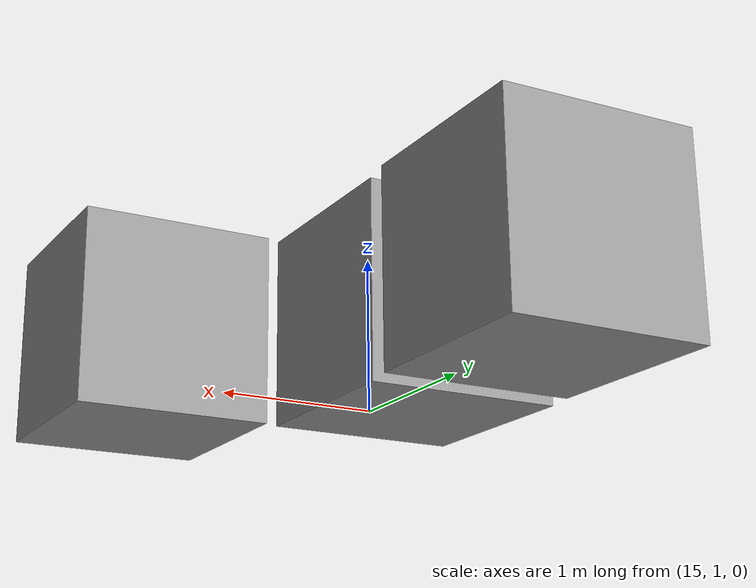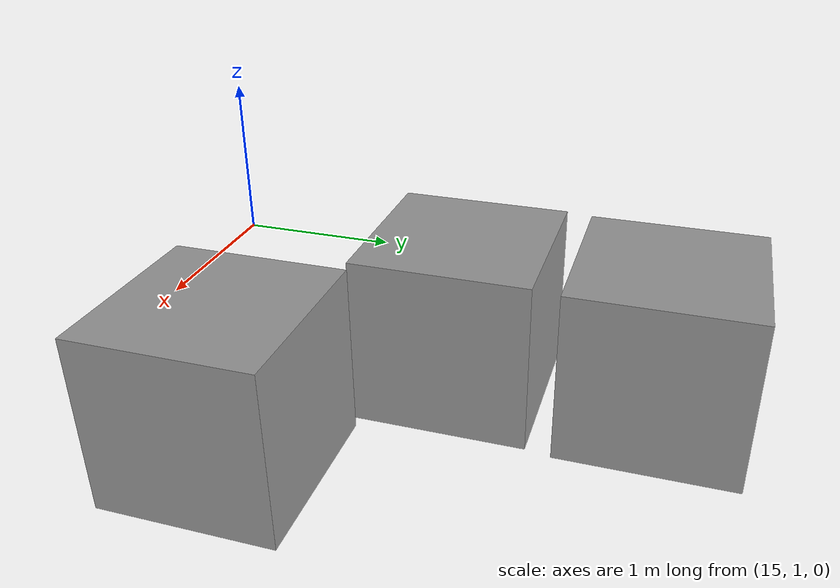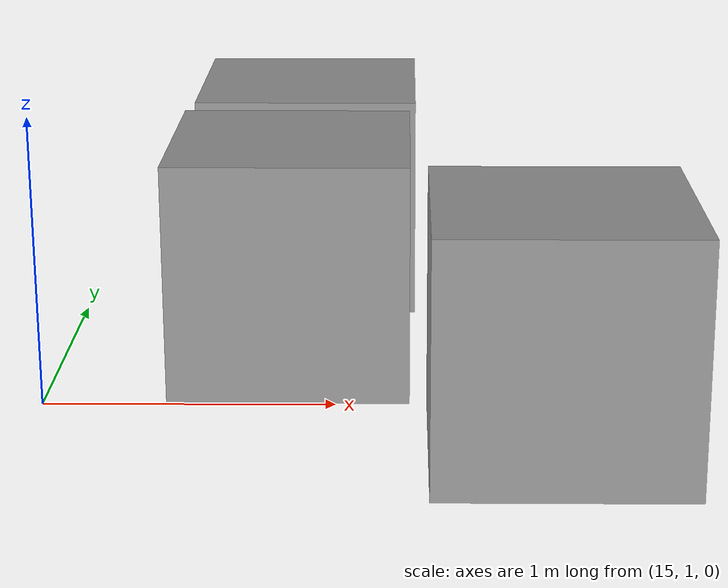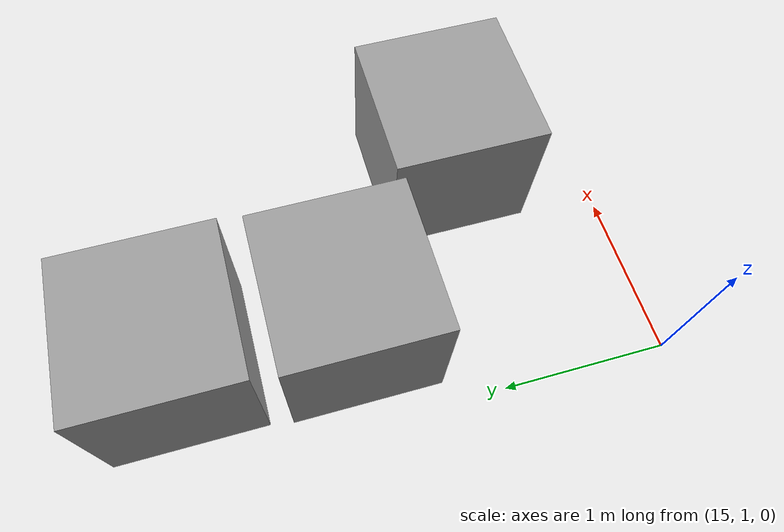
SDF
<?xml version='1.0'?>
<sdf version='1.6'>
  <model name='no_exit_maze'>
    <link name='link_0'>
      <inertial>
        <mass>1</mass>
        <inertia>
          <ixx>0.166667</ixx>
          <ixy>0</ixy>
          <ixz>0</ixz>
          <iyy>0.166667</iyy>
          <iyz>0</iyz>
          <izz>0.166667</izz>
        </inertia>
      </inertial>
      <pose frame=''>15.7827 3.90502 -0 0 -0 0</pose>
      <visual name='visual'>
        <pose frame=''>0 0 0 0 -0 0</pose>
        <geometry>
          <box>
            <size>1 1 1</size>
          </box>
        </geometry>
        <material>
          <lighting>1</lighting>
          <script>
            <uri>file://media/materials/scripts/gazebo.material</uri>
            <name>Gazebo/Grey</name>
          </script>
        </material>
        <transparency>0</transparency>
        <cast_shadows>1</cast_shadows>
      </visual>
      <collision name='collision'>
        <laser_retro>0</laser_retro>
        <max_contacts>10</max_contacts>
        <pose frame=''>0 0 0 0 -0 0</pose>
        <geometry>
          <box>
            <size>1 1 1</size>
          </box>
        </geometry>
        <surface>
          <friction>
            <ode>
              <mu>1</mu>
              <mu2>1</mu2>
              <fdir1>0 0 0</fdir1>
              <slip1>0</slip1>
              <slip2>0</slip2>
            </ode>
            <torsional>
              <coefficient>1</coefficient>
              <patch_radius>0</patch_radius>
              <surface_radius>0</surface_radius>
              <use_patch_radius>1</use_patch_radius>
              <ode>
                <slip>0</slip>
              </ode>
            </torsional>
          </friction>
          <bounce>
            <restitution_coefficient>0</restitution_coefficient>
            <threshold>1e+06</threshold>
          </bounce>
          <contact>
            <collide_without_contact>0</collide_without_contact>
            <collide_without_contact_bitmask>1</collide_without_contact_bitmask>
            <collide_bitmask>1</collide_bitmask>
            <ode>
              <soft_cfm>0</soft_cfm>
              <soft_erp>0.2</soft_erp>
              <kp>1e+13</kp>
              <kd>1</kd>
              <max_vel>0.01</max_vel>
              <min_depth>0</min_depth>
            </ode>
            <bullet>
              <split_impulse>1</split_impulse>
              <split_impulse_penetration_threshold>-0.01</split_impulse_penetration_threshold>
              <soft_cfm>0</soft_cfm>
              <soft_erp>0.2</soft_erp>
              <kp>1e+13</kp>
              <kd>1</kd>
            </bullet>
          </contact>
        </surface>
      </collision>
    </link>
    <link name='link_1'>
      <inertial>
        <mass>1</mass>
        <inertia>
          <ixx>0.166667</ixx>
          <ixy>0</ixy>
          <ixz>0</ixz>
          <iyy>0.166667</iyy>
          <iyz>0</iyz>
          <izz>0.166667</izz>
        </inertia>
      </inertial>
      <pose frame=''>15.7563 2.75642 -0 0 -0 0</pose>
      <visual name='visual'>
        <pose frame=''>0 0 0 0 -0 0</pose>
        <geometry>
          <box>
            <size>1 1 1</size>
          </box>
        </geometry>
        <material>
          <lighting>1</lighting>
          <script>
            <uri>file://media/materials/scripts/gazebo.material</uri>
            <name>Gazebo/Grey</name>
          </script>
        </material>
        <transparency>0</transparency>
        <cast_shadows>1</cast_shadows>
      </visual>
      <collision name='collision'>
        <laser_retro>0</laser_retro>
        <max_contacts>10</max_contacts>
        <pose frame=''>0 0 0 0 -0 0</pose>
        <geometry>
          <box>
            <size>1 1 1</size>
          </box>
        </geometry>
        <surface>
          <friction>
            <ode>
              <mu>1</mu>
              <mu2>1</mu2>
              <fdir1>0 0 0</fdir1>
              <slip1>0</slip1>
              <slip2>0</slip2>
            </ode>
            <torsional>
              <coefficient>1</coefficient>
              <patch_radius>0</patch_radius>
              <surface_radius>0</surface_radius>
              <use_patch_radius>1</use_patch_radius>
              <ode>
                <slip>0</slip>
              </ode>
            </torsional>
          </friction>
          <bounce>
            <restitution_coefficient>0</restitution_coefficient>
            <threshold>1e+06</threshold>
          </bounce>
          <contact>
            <collide_without_contact>0</collide_without_contact>
            <collide_without_contact_bitmask>1</collide_without_contact_bitmask>
            <collide_bitmask>1</collide_bitmask>
            <ode>
              <soft_cfm>0</soft_cfm>
              <soft_erp>0.2</soft_erp>
              <kp>1e+13</kp>
              <kd>1</kd>
              <max_vel>0.01</max_vel>
              <min_depth>0</min_depth>
            </ode>
            <bullet>
              <split_impulse>1</split_impulse>
              <split_impulse_penetration_threshold>-0.01</split_impulse_penetration_threshold>
              <soft_cfm>0</soft_cfm>
              <soft_erp>0.2</soft_erp>
              <kp>1e+13</kp>
              <kd>1</kd>
            </bullet>
          </contact>
        </surface>
      </collision>
    </link>
    <link name='link_2'>
      <inertial>
        <mass>1</mass>
        <inertia>
          <ixx>0.166667</ixx>
          <ixy>0</ixy>
          <ixz>0</ixz>
          <iyy>0.166667</iyy>
          <iyz>0</iyz>
          <izz>0.166667</izz>
        </inertia>
      </inertial>
      <pose frame=''>16.8272 1.79052 -0 0 -0 0</pose>
      <visual name='visual'>
        <pose frame=''>0 0 0 0 -0 0</pose>
        <geometry>
          <box>
            <size>1 1 1</size>
          </box>
        </geometry>
        <material>
          <lighting>1</lighting>
          <script>
            <uri>file://media/materials/scripts/gazebo.material</uri>
            <name>Gazebo/Grey</name>
          </script>
        </material>
        <transparency>0</transparency>
        <cast_shadows>1</cast_shadows>
      </visual>
      <collision name='collision'>
        <laser_retro>0</laser_retro>
        <max_contacts>10</max_contacts>
        <pose frame=''>0 0 0 0 -0 0</pose>
        <geometry>
          <box>
            <size>1 1 1</size>
          </box>
        </geometry>
        <surface>
          <friction>
            <ode>
              <mu>1</mu>
              <mu2>1</mu2>
              <fdir1>0 0 0</fdir1>
              <slip1>0</slip1>
              <slip2>0</slip2>
            </ode>
            <torsional>
              <coefficient>1</coefficient>
              <patch_radius>0</patch_radius>
              <surface_radius>0</surface_radius>
              <use_patch_radius>1</use_patch_radius>
              <ode>
                <slip>0</slip>
              </ode>
            </torsional>
          </friction>
          <bounce>
            <restitution_coefficient>0</restitution_coefficient>
            <threshold>1e+06</threshold>
          </bounce>
          <contact>
            <collide_without_contact>0</collide_without_contact>
            <collide_without_contact_bitmask>1</collide_without_contact_bitmask>
            <collide_bitmask>1</collide_bitmask>
            <ode>
              <soft_cfm>0</soft_cfm>
              <soft_erp>0.2</soft_erp>
              <kp>1e+13</kp>
              <kd>1</kd>
              <max_vel>0.01</max_vel>
              <min_depth>0</min_depth>
            </ode>
            <bullet>
              <split_impulse>1</split_impulse>
              <split_impulse_penetration_threshold>-0.01</split_impulse_penetration_threshold>
              <soft_cfm>0</soft_cfm>
              <soft_erp>0.2</soft_erp>
              <kp>1e+13</kp>
              <kd>1</kd>
            </bullet>
          </contact>
        </surface>
      </collision>
    </link>
    <static>0</static>
    <allow_auto_disable>1</allow_auto_disable>
  </model>
</sdf>
